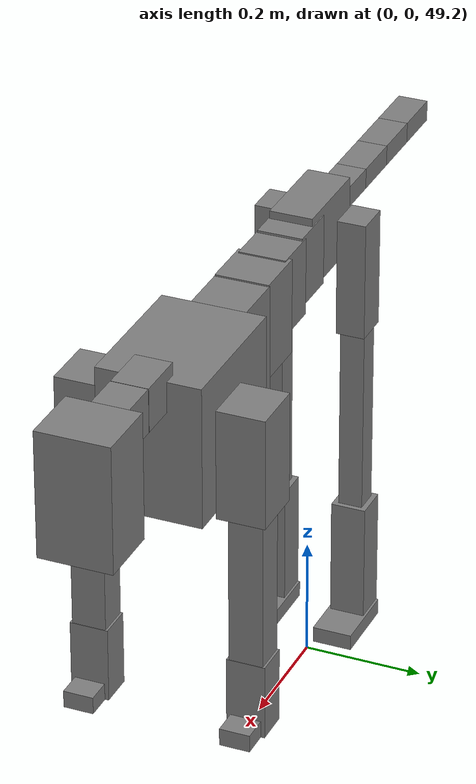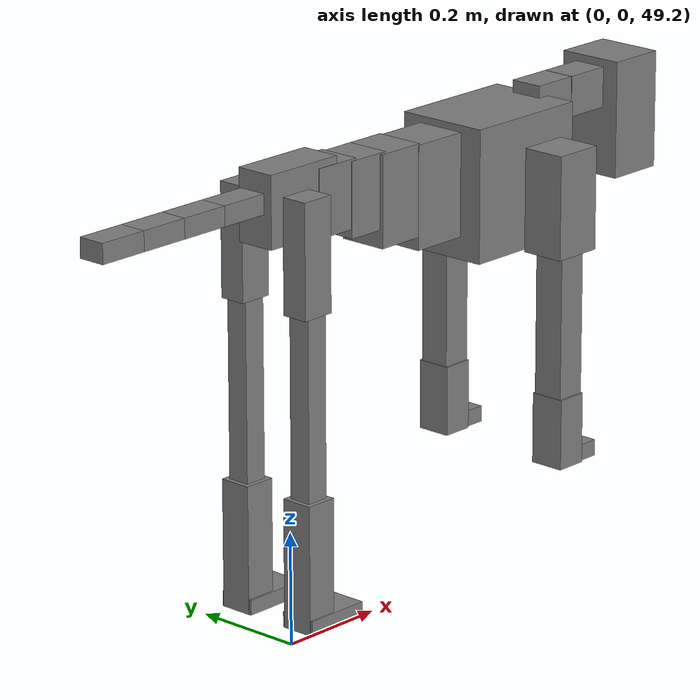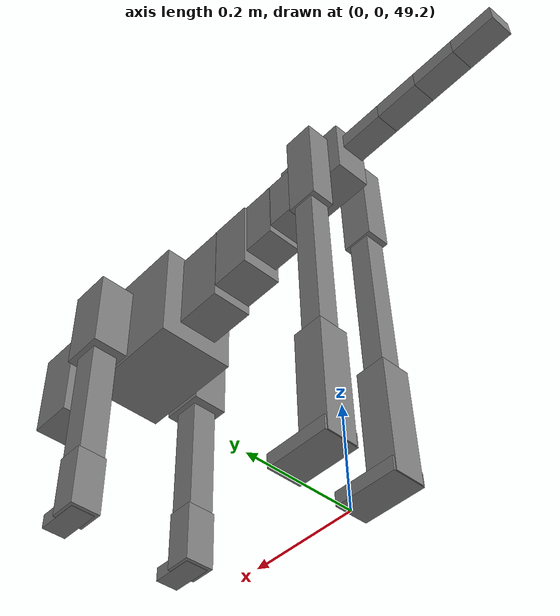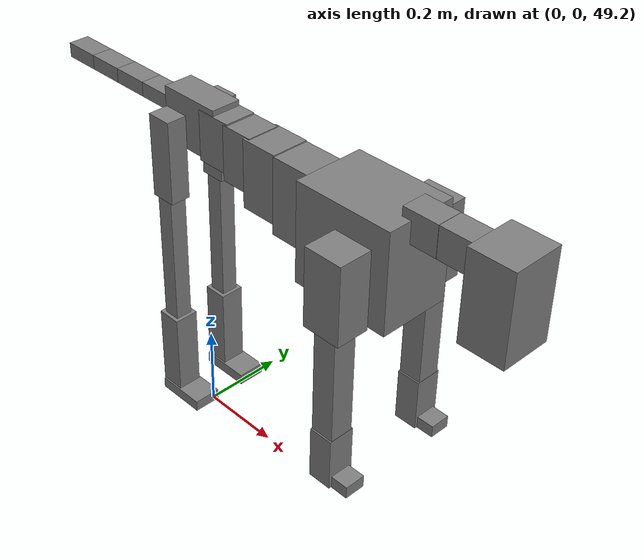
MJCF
<mujoco model="dog">

    <default>
        <joint armature="0.02" stiffness="1" damping="0.2" limited="true"/>
        <geom condim="3" friction="1 0.05 0.05" margin="0.01"/>
        <motor ctrllimited="true" ctrlrange="-1.0 1.0" forcelimited="true" gear="50"/>
    </default>

    <compiler inertiafromgeom="true" angle="radian"/>

    <option timestep="0.016" iterations="50" tolerance="1e-10" solver="Newton" jacobian="dense" cone="pyramidal"/>

    <size nconmax="20000" njmax="60000" nstack="5000000"/>
    <visual>
        <map force="0.1" zfar="30"/>
        <rgba haze="0.15 0.25 0.35 1"/>
        <quality shadowsize="2048"/>
        <global offwidth="800" offheight="800"/>
    </visual>

    <asset>
        <texture type="skybox" builtin="gradient" rgb1="0.3 0.5 0.7" rgb2="0 0 0" width="512" height="512"/>
        <texture name="texplane" type="2d" builtin="checker" rgb1=".2 .3 .4" rgb2=".1 0.15 0.2" width="512" height="512"
                 mark="cross" markrgb=".8 .8 .8"/>
        <texture name="texgeom" type="cube" builtin="flat" mark="cross" width="127" height="1278" rgb1="0.8 0.6 0.4"
                 rgb2="0.8 0.6 0.4" markrgb="1 1 1" random="0.01"/>

        <material name="matplane" reflectance="0.3" texture="texplane" texrepeat="1 1" texuniform="true"/>
        <material name="matgeom" texture="texgeom" texuniform="true" rgba="0.8 0.6 .4 1"/>
    </asset>

    <worldbody>
        <geom name="floor" pos="0 0 0" size="0 0 .25" type="plane" material="matplane" condim="3"/>

        <light directional="false" diffuse=".2 .2 .2" specular="0 0 0" pos="0 0 5" dir="0 0 -1" castshadow="false"/>
        <light mode="targetbodycom" target="torso" directional="false" diffuse=".8 .8 .8" specular="0.3 0.3 0.3"
               pos="0 0 4.0" dir="0 0 -1"/>

        <body name="root" pos="0 0 50">
            <freejoint name="root_1"/>
            <geom type="box" pos="0 0 -0.02" size="0.0774  0.0358  0.063" density="2030"/>

            <body name="spine1" pos="0.054 0 0">
                <joint name="spine1_y" axis="0 1 0" range="0 0.7" limited="true"/>
                <geom type="box" pos="0.02375 0 -0.03" size="0.04375  0.0375  0.05985" density="2030"/>

                <body name="spine2" pos="0.0612 0 0">
                    <joint name="spine2_y" axis="0 1 0" range="-0.15 0.15" limited="true"/>
                    <geom type="box" pos="0.03555  0  -0.04" size="0.04055  0.039  0.06615" density="2030"/>

                    <body name="spine3" pos="0.0730 0 0">
                        <joint name="spine3_y" axis="0 1 0" range="-0.15 0.15" limited="true"/>
                        <geom type="box" pos="0.03555  0  -0.057" size="0.04555  0.0445  0.081" density="2030"/>

                        <body name="spine4" pos="0.0780 0 0">
                            <joint name="spine4_y" axis="0 1 0" range="-0.15 0.15" limited="true"/>
                            <geom type="box" pos="0.05265  0  -0.07" size="0.05265  0.045  0.09135" density="2030"/>

                            <body name="torso" pos="0.1082 0 0">
                                <joint name="torso_y" axis="0 1 0" range="-0.15 0.15" limited="true"/>
                                <geom type="box" pos="0.11925  0  -0.085" size="0.11925  0.085  0.11745"
                                      density="2030"/>

                                <body name="neck1" pos="0.2160  0   0.0180">
                                    <joint name="neck1_y" axis="0 1 0" range="-1.2  -1" limited="true"/>
                                    <geom type="box" pos="0.0423  0  0" size="0.0423  0.03  0.036" density="2325"/>

                                    <body name="neck2" pos="0.0853  0  0">
                                        <joint name="neck2_y" axis="0 1 0" range="0.1  0" limited="true"/>
                                        <geom type="box" pos="0.0423  0  0" size="0.0423  0.03  0.036" density="2325"/>

                                        <body name="head" pos="0.0853  0  0">
                                            <joint name="head_y" axis="0 1 0" range="-0.3  -0.2" limited="true"/>
                                            <geom type="box" pos="0.0531  0  -0.055" size="0.0531  0.06  0.1044"
                                                  density="4030"/>

                                        </body>
                                    </body>
                                </body>

                                <body name="front_shoulder" pos="0.156  0   -0.0480">
                                    <joint name="front_shoulder_y" axis="0 1 0" range="-1 1.5" limited="true"/>
                                    <geom type="box" pos="0 0.13 -0.0648" size="0.0459  0.0393  0.0915" density="1158"/>
                                    <geom type="box" pos="0 -0.13 -0.0648" size="0.0459  0.0393  0.0915"
                                          density="1158"/>

                                    <body name="front_elbow" pos="0  0  -0.1297">
                                        <joint name="front_elbow_y" axis="0 1 0" range="-2 0" limited="true"/>
                                        <geom type="box" pos="0 0.13 -0.1476" size="0.0273  0.0279  0.1476"
                                              density="1081"/>
                                        <geom type="box" pos="0 -0.13 -0.1476" size="0.0273  0.0279  0.1476"
                                              density="1081"/>

                                        <body name="front_wrist" pos="0  0  -0.2951">
                                            <joint name="front_wrist_y" axis="0 1 0" range="-0.2 0" limited="true"/>
                                            <geom type="box" pos="0 0.13 -0.0500" size="0.0283  0.0315  0.0631"
                                                  density="1664"/>
                                            <geom type="box" pos="0 -0.13 -0.0500" size="0.0283  0.0315  0.0631"
                                                  density="1664"/>

                                            <body name="front_finger_end" pos="0  0  -0.0999">
                                                <joint name="front_finger_y" axis="0 1 0" range="-0.4 1"
                                                       limited="true"/>
                                                <geom type="box" pos="0.0249  0.13  0.0005"
                                                      size="0.0457  0.0249  0.0145" density="1515"/>
                                                <geom type="box" pos="0.0249  -0.13  0.0005"
                                                      size="0.0457  0.0249  0.0145" density="1515"/>

                                            </body>

                                        </body>
                                    </body>
                                </body>

                            </body>
                        </body>
                    </body>
                </body>
            </body>

            <body name="back_hip" pos="-0.03 0 -0.018">
                <joint name="back_hip_y" axis="0 1 0" range="-1.5 0.3" limited="true"/>
                <geom type="box" pos="0 0.07 -0.0770" size="0.0306  0.0240  0.0998" density="1154"/>
                <geom type="box" pos="0 -0.07 -0.0770" size="0.0306  0.0240  0.0998" density="1154"/>

                <body name="back_knee" pos="0  0  -0.1540">
                    <joint name="back_knee_y" axis="0 1 0" range="0 2.8" limited="true"/>
                    <geom type="box" pos="0 0.07 -0.1759" size="0.0206  0.0203  0.1915" density="1227"/>
                    <geom type="box" pos="0 -0.07 -0.1759" size="0.0206  0.0203  0.1915" density="1227"/>

                    <body name="back_ankle" pos="0  0  -0.3518">
                        <joint name="back_ankle_y" axis="0 1 0" range="-2.2 0" limited="true"/>
                        <geom type="box" pos="0 0.07 -0.1022" size="0.0291  0.0291  0.1135" density="1284"/>
                        <geom type="box" pos="0 -0.07 -0.1022" size="0.0291  0.0291  0.1135" density="1284"/>

                        <body name="back_toe_end" pos="0  0  -0.2044">
                            <joint name="back_toe_y" axis="0 1 0" range="-0.4 1" limited="true"/>
                            <geom type="box" pos="0.0330  0.07  0.0016" size="0.0604  0.0330  0.0134" density="1515"/>
                            <geom type="box" pos="0.0330  -0.07  0.0016" size="0.0604  0.0330  0.0134" density="1515"/>

                        </body>
                    </body>
                </body>
            </body>

            <body name="tail1" pos="-0.074 0 -0.006">
                <joint name="tail1_y" axis="0 1 0" range="-0.2 0.2" limited="true"/>
                <geom type="box" pos="-0.0536  0  0" size="0.045  0.025  0.0175" density="1587"/>

                <body name="tail2" pos="-0.09 0 0">
                    <joint name="tail2_y" axis="0 1 0" range="-0.2 0.2" limited="true"/>
                    <geom type="box" pos="-0.0536  0  0" size="0.045  0.025  0.0175" density="1587"/>

                    <body name="tail3" pos="-0.09 0 0">
                        <joint name="tail3_y" axis="0 1 0" range="-0.2 0.2" limited="true"/>
                        <geom type="box" pos="-0.0536  0  0" size="0.045  0.025  0.0175" density="1587"/>

                        <body name="tail4" pos="-0.09 0 0">
                            <joint name="tail4_y" axis="0 1 0" range="-0.2 0.2" limited="true"/>
                            <geom type="box" pos="-0.0536  0  0" size="0.045  0.025  0.0175" density="1587"/>

                        </body>
                    </body>
                </body>
            </body>
        </body>
    </worldbody>

    <actuator>
        <motor joint="spine1_y" forcerange="-150 150     "/>
        <motor joint="spine2_y" forcerange="-150 150     "/>
        <motor joint="spine3_y" forcerange="-150 150     "/>
        <motor joint="spine4_y" forcerange="-150 150     "/>
        <motor joint="torso_y" forcerange="-150 150     "/>
        <motor joint="neck1_y" forcerange="-100 100       "/>
        <motor joint="neck2_y" forcerange="-100 100       "/>
        <motor joint="head_y" forcerange="-150 150       "/>
        <motor joint="front_shoulder_y" forcerange="-173.33 188.48"/>
        <motor joint="front_elbow_y" forcerange="-121.68 180.94"/>
        <motor joint="front_wrist_y" forcerange="-124.05 127.67"/>
        <motor joint="front_finger_y" forcerange="-31.76 61.29"/>
        <motor joint="back_hip_y" forcerange="-250.47 269.08"/>
        <motor joint="back_knee_y" forcerange="-217.63 278.26"/>
        <motor joint="back_angle_y" forcerange="-202.18 163.29"/>
        <motor joint="back_toe_y" forcerange="-73.89 109.74"/>
        <motor joint="tail1_y" forcerange="-50 50     "/>
        <motor joint="tail2_y" forcerange="-50 50     "/>
        <motor joint="tail3_y" forcerange="-50 50     "/>
        <motor joint="tail4_y" forcerange="-50 50     "/>
    </actuator>
</mujoco>
